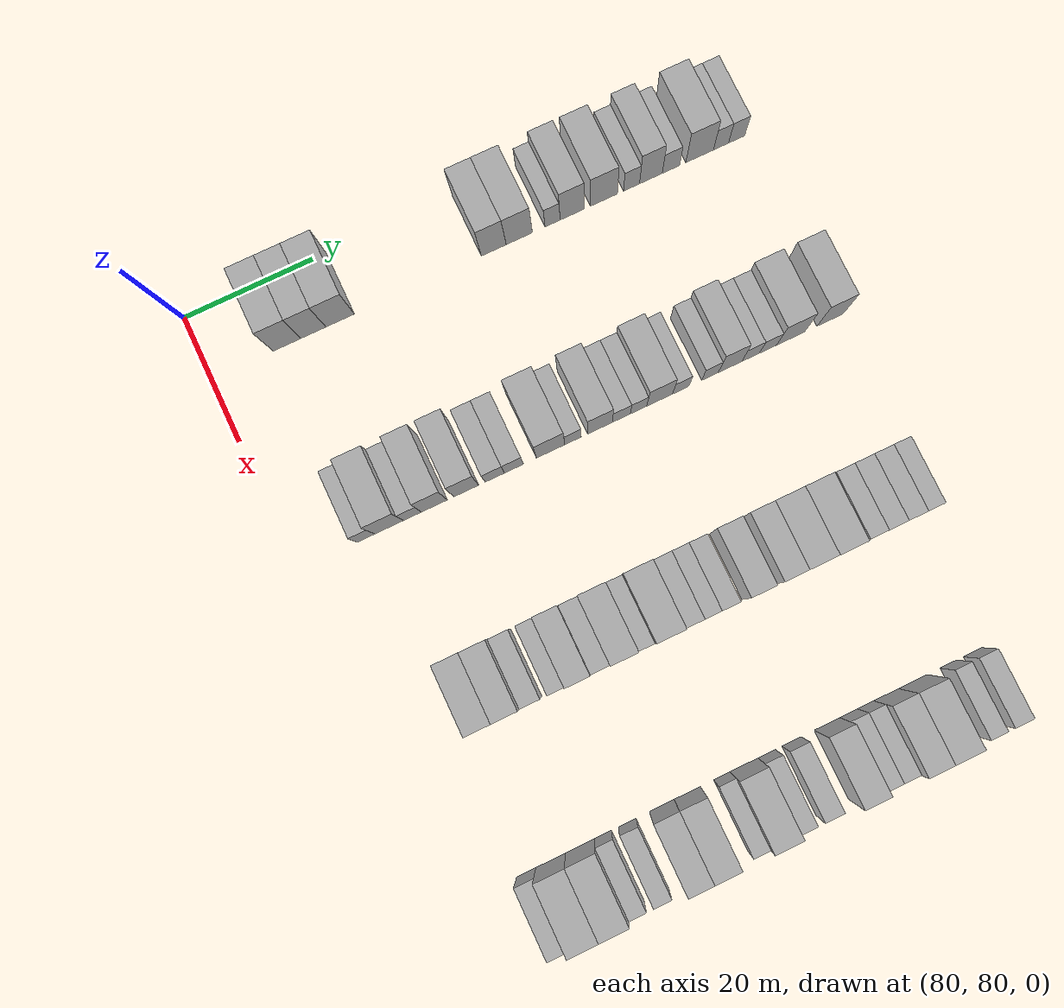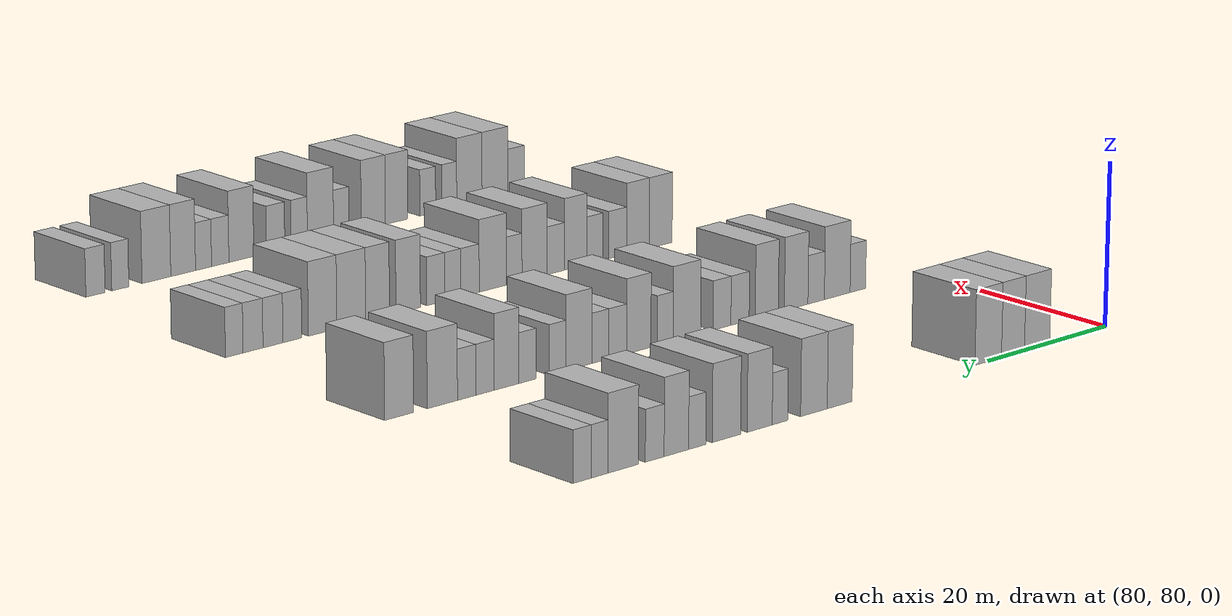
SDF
<sdf version="1.6">
 <world name="default">
  <model name="building_589">
   <static>1</static>
   <pose>85.0000 91.7411 0 0.000000 0.000000 0.000000</pose>
   <link name="link">
    <pose>0 0 4.50 0 0 0</pose>
    <collision name="collision"><geometry><box><size>10.0000 4.2975 9.0000</size></box></geometry></collision>
    <visual name="visual">
     <cast_shadows>0</cast_shadows>
     <geometry><box><size>10.0000 4.2975 9.0000</size></box></geometry>
     <material>
      <script>
       <uri>model://HANNAS_wall/materials/scripts</uri>
       <uri>model://HANNAS_wall/materials/textures</uri>
       <name>vrc/HANNAS_wall</name>
      </script>
     </material>
    </visual>
   </link>
  </model>
  <model name="building_590">
   <static>1</static>
   <pose>85.0000 95.8193 0 0.000000 0.000000 0.000000</pose>
   <link name="link">
    <pose>0 0 4.50 0 0 0</pose>
    <collision name="collision"><geometry><box><size>10.0000 3.8587 9.0000</size></box></geometry></collision>
    <visual name="visual">
     <cast_shadows>0</cast_shadows>
     <geometry><box><size>10.0000 3.8587 9.0000</size></box></geometry>
     <material>
      <script>
       <uri>model://HANNAS_wall/materials/scripts</uri>
       <uri>model://HANNAS_wall/materials/textures</uri>
       <name>vrc/HANNAS_wall</name>
      </script>
     </material>
    </visual>
   </link>
  </model>
  <model name="building_591">
   <static>1</static>
   <pose>85.0000 99.9605 0 0.000000 0.000000 0.000000</pose>
   <link name="link">
    <pose>0 0 4.50 0 0 0</pose>
    <collision name="collision"><geometry><box><size>10.0000 4.4238 9.0000</size></box></geometry></collision>
    <visual name="visual">
     <cast_shadows>0</cast_shadows>
     <geometry><box><size>10.0000 4.4238 9.0000</size></box></geometry>
     <material>
      <script>
       <uri>model://HANNAS_wall/materials/scripts</uri>
       <uri>model://HANNAS_wall/materials/textures</uri>
       <name>vrc/HANNAS_wall</name>
      </script>
     </material>
    </visual>
   </link>
  </model>
  <model name="building_592">
   <static>1</static>
   <pose>85.0000 124.0748 0 0.000000 0.000000 0.000000</pose>
   <link name="link">
    <pose>0 0 4.50 0 0 0</pose>
    <collision name="collision"><geometry><box><size>10.0000 3.9349 9.0000</size></box></geometry></collision>
    <visual name="visual">
     <cast_shadows>0</cast_shadows>
     <geometry><box><size>10.0000 3.9349 9.0000</size></box></geometry>
     <material>
      <script>
       <uri>model://HANNAS_wall/materials/scripts</uri>
       <uri>model://HANNAS_wall/materials/textures</uri>
       <name>vrc/HANNAS_wall</name>
      </script>
     </material>
    </visual>
   </link>
  </model>
  <model name="building_593">
   <static>1</static>
   <pose>85.0000 128.1296 0 0.000000 0.000000 0.000000</pose>
   <link name="link">
    <pose>0 0 4.50 0 0 0</pose>
    <collision name="collision"><geometry><box><size>10.0000 4.1747 9.0000</size></box></geometry></collision>
    <visual name="visual">
     <cast_shadows>0</cast_shadows>
     <geometry><box><size>10.0000 4.1747 9.0000</size></box></geometry>
     <material>
      <script>
       <uri>model://HANNAS_wall/materials/scripts</uri>
       <uri>model://HANNAS_wall/materials/textures</uri>
       <name>vrc/HANNAS_wall</name>
      </script>
     </material>
    </visual>
   </link>
  </model>
  <model name="building_594">
   <static>1</static>
   <pose>85.0000 133.4236 0 0.000000 0.000000 0.000000</pose>
   <link name="link">
    <pose>0 0 3.00 0 0 0</pose>
    <collision name="collision"><geometry><box><size>10.0000 2.4132 6.0000</size></box></geometry></collision>
    <visual name="visual">
     <cast_shadows>0</cast_shadows>
     <geometry><box><size>10.0000 2.4132 6.0000</size></box></geometry>
     <material>
      <script>
       <uri>model://HANNAS_wall/materials/scripts</uri>
       <uri>model://HANNAS_wall/materials/textures</uri>
       <name>vrc/HANNAS_wall</name>
      </script>
     </material>
    </visual>
   </link>
  </model>
  <model name="building_595">
   <static>1</static>
   <pose>85.0000 136.5557 0 0.000000 0.000000 0.000000</pose>
   <link name="link">
    <pose>0 0 4.50 0 0 0</pose>
    <collision name="collision"><geometry><box><size>10.0000 3.8509 9.0000</size></box></geometry></collision>
    <visual name="visual">
     <cast_shadows>0</cast_shadows>
     <geometry><box><size>10.0000 3.8509 9.0000</size></box></geometry>
     <material>
      <script>
       <uri>model://HANNAS_wall/materials/scripts</uri>
       <uri>model://HANNAS_wall/materials/textures</uri>
       <name>vrc/HANNAS_wall</name>
      </script>
     </material>
    </visual>
   </link>
  </model>
  <model name="building_596">
   <static>1</static>
   <pose>85.0000 141.6342 0 0.000000 0.000000 0.000000</pose>
   <link name="link">
    <pose>0 0 4.50 0 0 0</pose>
    <collision name="collision"><geometry><box><size>10.0000 4.3062 9.0000</size></box></geometry></collision>
    <visual name="visual">
     <cast_shadows>0</cast_shadows>
     <geometry><box><size>10.0000 4.3062 9.0000</size></box></geometry>
     <material>
      <script>
       <uri>model://HANNAS_wall/materials/scripts</uri>
       <uri>model://HANNAS_wall/materials/textures</uri>
       <name>vrc/HANNAS_wall</name>
      </script>
     </material>
    </visual>
   </link>
  </model>
  <model name="building_597">
   <static>1</static>
   <pose>85.0000 146.0694 0 0.000000 0.000000 0.000000</pose>
   <link name="link">
    <pose>0 0 3.00 0 0 0</pose>
    <collision name="collision"><geometry><box><size>10.0000 2.5641 6.0000</size></box></geometry></collision>
    <visual name="visual">
     <cast_shadows>0</cast_shadows>
     <geometry><box><size>10.0000 2.5641 6.0000</size></box></geometry>
     <material>
      <script>
       <uri>model://HANNAS_wall/materials/scripts</uri>
       <uri>model://HANNAS_wall/materials/textures</uri>
       <name>vrc/HANNAS_wall</name>
      </script>
     </material>
    </visual>
   </link>
  </model>
  <model name="building_598">
   <static>1</static>
   <pose>85.0000 149.1829 0 0.000000 0.000000 0.000000</pose>
   <link name="link">
    <pose>0 0 4.50 0 0 0</pose>
    <collision name="collision"><geometry><box><size>10.0000 3.6630 9.0000</size></box></geometry></collision>
    <visual name="visual">
     <cast_shadows>0</cast_shadows>
     <geometry><box><size>10.0000 3.6630 9.0000</size></box></geometry>
     <material>
      <script>
       <uri>model://HANNAS_wall/materials/scripts</uri>
       <uri>model://HANNAS_wall/materials/textures</uri>
       <name>vrc/HANNAS_wall</name>
      </script>
     </material>
    </visual>
   </link>
  </model>
  <model name="building_599">
   <static>1</static>
   <pose>85.0000 152.4128 0 0.000000 0.000000 0.000000</pose>
   <link name="link">
    <pose>0 0 3.00 0 0 0</pose>
    <collision name="collision"><geometry><box><size>10.0000 2.7968 6.0000</size></box></geometry></collision>
    <visual name="visual">
     <cast_shadows>0</cast_shadows>
     <geometry><box><size>10.0000 2.7968 6.0000</size></box></geometry>
     <material>
      <script>
       <uri>model://HANNAS_wall/materials/scripts</uri>
       <uri>model://HANNAS_wall/materials/textures</uri>
       <name>vrc/HANNAS_wall</name>
      </script>
     </material>
    </visual>
   </link>
  </model>
  <model name="building_600">
   <static>1</static>
   <pose>85.0000 157.0596 0 0.000000 0.000000 0.000000</pose>
   <link name="link">
    <pose>0 0 4.50 0 0 0</pose>
    <collision name="collision"><geometry><box><size>10.0000 4.4967 9.0000</size></box></geometry></collision>
    <visual name="visual">
     <cast_shadows>0</cast_shadows>
     <geometry><box><size>10.0000 4.4967 9.0000</size></box></geometry>
     <material>
      <script>
       <uri>model://HANNAS_wall/materials/scripts</uri>
       <uri>model://HANNAS_wall/materials/textures</uri>
       <name>vrc/HANNAS_wall</name>
      </script>
     </material>
    </visual>
   </link>
  </model>
  <model name="building_601">
   <static>1</static>
   <pose>85.0000 160.5329 0 0.000000 0.000000 0.000000</pose>
   <link name="link">
    <pose>0 0 3.00 0 0 0</pose>
    <collision name="collision"><geometry><box><size>10.0000 2.4500 6.0000</size></box></geometry></collision>
    <visual name="visual">
     <cast_shadows>0</cast_shadows>
     <geometry><box><size>10.0000 2.4500 6.0000</size></box></geometry>
     <material>
      <script>
       <uri>model://HANNAS_wall/materials/scripts</uri>
       <uri>model://HANNAS_wall/materials/textures</uri>
       <name>vrc/HANNAS_wall</name>
      </script>
     </material>
    </visual>
   </link>
  </model>
  <model name="building_602">
   <static>1</static>
   <pose>85.0000 163.0776 0 0.000000 0.000000 0.000000</pose>
   <link name="link">
    <pose>0 0 3.00 0 0 0</pose>
    <collision name="collision"><geometry><box><size>10.0000 2.6395 6.0000</size></box></geometry></collision>
    <visual name="visual">
     <cast_shadows>0</cast_shadows>
     <geometry><box><size>10.0000 2.6395 6.0000</size></box></geometry>
     <material>
      <script>
       <uri>model://HANNAS_wall/materials/scripts</uri>
       <uri>model://HANNAS_wall/materials/textures</uri>
       <name>vrc/HANNAS_wall</name>
      </script>
     </material>
    </visual>
   </link>
  </model>
  <model name="building_812">
   <static>1</static>
   <pose>115.0000 90.7237 0 0.000000 0.000000 0.000000</pose>
   <link name="link">
    <pose>0 0 3.00 0 0 0</pose>
    <collision name="collision"><geometry><box><size>10.0000 2.6474 6.0000</size></box></geometry></collision>
    <visual name="visual">
     <cast_shadows>0</cast_shadows>
     <geometry><box><size>10.0000 2.6474 6.0000</size></box></geometry>
     <material>
      <script>
       <uri>model://HANNAS_wall/materials/scripts</uri>
       <uri>model://HANNAS_wall/materials/textures</uri>
       <name>vrc/HANNAS_wall</name>
      </script>
     </material>
    </visual>
   </link>
  </model>
  <model name="building_813">
   <static>1</static>
   <pose>115.0000 94.2168 0 0.000000 0.000000 0.000000</pose>
   <link name="link">
    <pose>0 0 4.50 0 0 0</pose>
    <collision name="collision"><geometry><box><size>10.0000 4.3388 9.0000</size></box></geometry></collision>
    <visual name="visual">
     <cast_shadows>0</cast_shadows>
     <geometry><box><size>10.0000 4.3388 9.0000</size></box></geometry>
     <material>
      <script>
       <uri>model://HANNAS_wall/materials/scripts</uri>
       <uri>model://HANNAS_wall/materials/textures</uri>
       <name>vrc/HANNAS_wall</name>
      </script>
     </material>
    </visual>
   </link>
  </model>
  <model name="building_814">
   <static>1</static>
   <pose>115.0000 97.7670 0 0.000000 0.000000 0.000000</pose>
   <link name="link">
    <pose>0 0 3.00 0 0 0</pose>
    <collision name="collision"><geometry><box><size>10.0000 2.7616 6.0000</size></box></geometry></collision>
    <visual name="visual">
     <cast_shadows>0</cast_shadows>
     <geometry><box><size>10.0000 2.7616 6.0000</size></box></geometry>
     <material>
      <script>
       <uri>model://HANNAS_wall/materials/scripts</uri>
       <uri>model://HANNAS_wall/materials/textures</uri>
       <name>vrc/HANNAS_wall</name>
      </script>
     </material>
    </visual>
   </link>
  </model>
  <model name="building_815">
   <static>1</static>
   <pose>115.0000 101.1133 0 0.000000 0.000000 0.000000</pose>
   <link name="link">
    <pose>0 0 4.50 0 0 0</pose>
    <collision name="collision"><geometry><box><size>10.0000 3.9310 9.0000</size></box></geometry></collision>
    <visual name="visual">
     <cast_shadows>0</cast_shadows>
     <geometry><box><size>10.0000 3.9310 9.0000</size></box></geometry>
     <material>
      <script>
       <uri>model://HANNAS_wall/materials/scripts</uri>
       <uri>model://HANNAS_wall/materials/textures</uri>
       <name>vrc/HANNAS_wall</name>
      </script>
     </material>
    </visual>
   </link>
  </model>
  <model name="building_816">
   <static>1</static>
   <pose>115.0000 105.9853 0 0.000000 0.000000 0.000000</pose>
   <link name="link">
    <pose>0 0 4.50 0 0 0</pose>
    <collision name="collision"><geometry><box><size>10.0000 3.8131 9.0000</size></box></geometry></collision>
    <visual name="visual">
     <cast_shadows>0</cast_shadows>
     <geometry><box><size>10.0000 3.8131 9.0000</size></box></geometry>
     <material>
      <script>
       <uri>model://HANNAS_wall/materials/scripts</uri>
       <uri>model://HANNAS_wall/materials/textures</uri>
       <name>vrc/HANNAS_wall</name>
      </script>
     </material>
    </visual>
   </link>
  </model>
  <model name="building_817">
   <static>1</static>
   <pose>115.0000 110.3812 0 0.000000 0.000000 0.000000</pose>
   <link name="link">
    <pose>0 0 3.00 0 0 0</pose>
    <collision name="collision"><geometry><box><size>10.0000 2.9788 6.0000</size></box></geometry></collision>
    <visual name="visual">
     <cast_shadows>0</cast_shadows>
     <geometry><box><size>10.0000 2.9788 6.0000</size></box></geometry>
     <material>
      <script>
       <uri>model://HANNAS_wall/materials/scripts</uri>
       <uri>model://HANNAS_wall/materials/textures</uri>
       <name>vrc/HANNAS_wall</name>
      </script>
     </material>
    </visual>
   </link>
  </model>
  <model name="building_818">
   <static>1</static>
   <pose>115.0000 113.3243 0 0.000000 0.000000 0.000000</pose>
   <link name="link">
    <pose>0 0 3.00 0 0 0</pose>
    <collision name="collision"><geometry><box><size>10.0000 2.9072 6.0000</size></box></geometry></collision>
    <visual name="visual">
     <cast_shadows>0</cast_shadows>
     <geometry><box><size>10.0000 2.9072 6.0000</size></box></geometry>
     <material>
      <script>
       <uri>model://HANNAS_wall/materials/scripts</uri>
       <uri>model://HANNAS_wall/materials/textures</uri>
       <name>vrc/HANNAS_wall</name>
      </script>
     </material>
    </visual>
   </link>
  </model>
  <model name="building_819">
   <static>1</static>
   <pose>115.0000 118.9766 0 0.000000 0.000000 0.000000</pose>
   <link name="link">
    <pose>0 0 4.50 0 0 0</pose>
    <collision name="collision"><geometry><box><size>10.0000 4.3975 9.0000</size></box></geometry></collision>
    <visual name="visual">
     <cast_shadows>0</cast_shadows>
     <geometry><box><size>10.0000 4.3975 9.0000</size></box></geometry>
     <material>
      <script>
       <uri>model://HANNAS_wall/materials/scripts</uri>
       <uri>model://HANNAS_wall/materials/textures</uri>
       <name>vrc/HANNAS_wall</name>
      </script>
     </material>
    </visual>
   </link>
  </model>
  <model name="building_820">
   <static>1</static>
   <pose>115.0000 122.4480 0 0.000000 0.000000 0.000000</pose>
   <link name="link">
    <pose>0 0 3.00 0 0 0</pose>
    <collision name="collision"><geometry><box><size>10.0000 2.5453 6.0000</size></box></geometry></collision>
    <visual name="visual">
     <cast_shadows>0</cast_shadows>
     <geometry><box><size>10.0000 2.5453 6.0000</size></box></geometry>
     <material>
      <script>
       <uri>model://HANNAS_wall/materials/scripts</uri>
       <uri>model://HANNAS_wall/materials/textures</uri>
       <name>vrc/HANNAS_wall</name>
      </script>
     </material>
    </visual>
   </link>
  </model>
  <model name="building_821">
   <static>1</static>
   <pose>115.0000 126.6419 0 0.000000 0.000000 0.000000</pose>
   <link name="link">
    <pose>0 0 4.50 0 0 0</pose>
    <collision name="collision"><geometry><box><size>10.0000 3.8425 9.0000</size></box></geometry></collision>
    <visual name="visual">
     <cast_shadows>0</cast_shadows>
     <geometry><box><size>10.0000 3.8425 9.0000</size></box></geometry>
     <material>
      <script>
       <uri>model://HANNAS_wall/materials/scripts</uri>
       <uri>model://HANNAS_wall/materials/textures</uri>
       <name>vrc/HANNAS_wall</name>
      </script>
     </material>
    </visual>
   </link>
  </model>
  <model name="building_822">
   <static>1</static>
   <pose>115.0000 129.9642 0 0.000000 0.000000 0.000000</pose>
   <link name="link">
    <pose>0 0 3.00 0 0 0</pose>
    <collision name="collision"><geometry><box><size>10.0000 2.8021 6.0000</size></box></geometry></collision>
    <visual name="visual">
     <cast_shadows>0</cast_shadows>
     <geometry><box><size>10.0000 2.8021 6.0000</size></box></geometry>
     <material>
      <script>
       <uri>model://HANNAS_wall/materials/scripts</uri>
       <uri>model://HANNAS_wall/materials/textures</uri>
       <name>vrc/HANNAS_wall</name>
      </script>
     </material>
    </visual>
   </link>
  </model>
  <model name="building_823">
   <static>1</static>
   <pose>115.0000 132.6499 0 0.000000 0.000000 0.000000</pose>
   <link name="link">
    <pose>0 0 3.00 0 0 0</pose>
    <collision name="collision"><geometry><box><size>10.0000 2.5695 6.0000</size></box></geometry></collision>
    <visual name="visual">
     <cast_shadows>0</cast_shadows>
     <geometry><box><size>10.0000 2.5695 6.0000</size></box></geometry>
     <material>
      <script>
       <uri>model://HANNAS_wall/materials/scripts</uri>
       <uri>model://HANNAS_wall/materials/textures</uri>
       <name>vrc/HANNAS_wall</name>
      </script>
     </material>
    </visual>
   </link>
  </model>
  <model name="building_824">
   <static>1</static>
   <pose>115.0000 135.9582 0 0.000000 0.000000 0.000000</pose>
   <link name="link">
    <pose>0 0 4.50 0 0 0</pose>
    <collision name="collision"><geometry><box><size>10.0000 4.0472 9.0000</size></box></geometry></collision>
    <visual name="visual">
     <cast_shadows>0</cast_shadows>
     <geometry><box><size>10.0000 4.0472 9.0000</size></box></geometry>
     <material>
      <script>
       <uri>model://HANNAS_wall/materials/scripts</uri>
       <uri>model://HANNAS_wall/materials/textures</uri>
       <name>vrc/HANNAS_wall</name>
      </script>
     </material>
    </visual>
   </link>
  </model>
  <model name="building_825">
   <static>1</static>
   <pose>115.0000 139.2797 0 0.000000 0.000000 0.000000</pose>
   <link name="link">
    <pose>0 0 3.00 0 0 0</pose>
    <collision name="collision"><geometry><box><size>10.0000 2.5958 6.0000</size></box></geometry></collision>
    <visual name="visual">
     <cast_shadows>0</cast_shadows>
     <geometry><box><size>10.0000 2.5958 6.0000</size></box></geometry>
     <material>
      <script>
       <uri>model://HANNAS_wall/materials/scripts</uri>
       <uri>model://HANNAS_wall/materials/textures</uri>
       <name>vrc/HANNAS_wall</name>
      </script>
     </material>
    </visual>
   </link>
  </model>
  <model name="building_826">
   <static>1</static>
   <pose>115.0000 143.8856 0 0.000000 0.000000 0.000000</pose>
   <link name="link">
    <pose>0 0 3.00 0 0 0</pose>
    <collision name="collision"><geometry><box><size>10.0000 2.6160 6.0000</size></box></geometry></collision>
    <visual name="visual">
     <cast_shadows>0</cast_shadows>
     <geometry><box><size>10.0000 2.6160 6.0000</size></box></geometry>
     <material>
      <script>
       <uri>model://HANNAS_wall/materials/scripts</uri>
       <uri>model://HANNAS_wall/materials/textures</uri>
       <name>vrc/HANNAS_wall</name>
      </script>
     </material>
    </visual>
   </link>
  </model>
  <model name="building_827">
   <static>1</static>
   <pose>115.0000 147.0630 0 0.000000 0.000000 0.000000</pose>
   <link name="link">
    <pose>0 0 4.50 0 0 0</pose>
    <collision name="collision"><geometry><box><size>10.0000 3.7390 9.0000</size></box></geometry></collision>
    <visual name="visual">
     <cast_shadows>0</cast_shadows>
     <geometry><box><size>10.0000 3.7390 9.0000</size></box></geometry>
     <material>
      <script>
       <uri>model://HANNAS_wall/materials/scripts</uri>
       <uri>model://HANNAS_wall/materials/textures</uri>
       <name>vrc/HANNAS_wall</name>
      </script>
     </material>
    </visual>
   </link>
  </model>
  <model name="building_828">
   <static>1</static>
   <pose>115.0000 150.3115 0 0.000000 0.000000 0.000000</pose>
   <link name="link">
    <pose>0 0 3.00 0 0 0</pose>
    <collision name="collision"><geometry><box><size>10.0000 2.7580 6.0000</size></box></geometry></collision>
    <visual name="visual">
     <cast_shadows>0</cast_shadows>
     <geometry><box><size>10.0000 2.7580 6.0000</size></box></geometry>
     <material>
      <script>
       <uri>model://HANNAS_wall/materials/scripts</uri>
       <uri>model://HANNAS_wall/materials/textures</uri>
       <name>vrc/HANNAS_wall</name>
      </script>
     </material>
    </visual>
   </link>
  </model>
  <model name="building_829">
   <static>1</static>
   <pose>115.0000 153.0586 0 0.000000 0.000000 0.000000</pose>
   <link name="link">
    <pose>0 0 3.00 0 0 0</pose>
    <collision name="collision"><geometry><box><size>10.0000 2.7362 6.0000</size></box></geometry></collision>
    <visual name="visual">
     <cast_shadows>0</cast_shadows>
     <geometry><box><size>10.0000 2.7362 6.0000</size></box></geometry>
     <material>
      <script>
       <uri>model://HANNAS_wall/materials/scripts</uri>
       <uri>model://HANNAS_wall/materials/textures</uri>
       <name>vrc/HANNAS_wall</name>
      </script>
     </material>
    </visual>
   </link>
  </model>
  <model name="building_830">
   <static>1</static>
   <pose>115.0000 156.6657 0 0.000000 0.000000 0.000000</pose>
   <link name="link">
    <pose>0 0 4.50 0 0 0</pose>
    <collision name="collision"><geometry><box><size>10.0000 4.4779 9.0000</size></box></geometry></collision>
    <visual name="visual">
     <cast_shadows>0</cast_shadows>
     <geometry><box><size>10.0000 4.4779 9.0000</size></box></geometry>
     <material>
      <script>
       <uri>model://HANNAS_wall/materials/scripts</uri>
       <uri>model://HANNAS_wall/materials/textures</uri>
       <name>vrc/HANNAS_wall</name>
      </script>
     </material>
    </visual>
   </link>
  </model>
  <model name="building_831">
   <static>1</static>
   <pose>115.0000 163.0141 0 0.000000 0.000000 0.000000</pose>
   <link name="link">
    <pose>0 0 4.50 0 0 0</pose>
    <collision name="collision"><geometry><box><size>10.0000 4.2191 9.0000</size></box></geometry></collision>
    <visual name="visual">
     <cast_shadows>0</cast_shadows>
     <geometry><box><size>10.0000 4.2191 9.0000</size></box></geometry>
     <material>
      <script>
       <uri>model://HANNAS_wall/materials/scripts</uri>
       <uri>model://HANNAS_wall/materials/textures</uri>
       <name>vrc/HANNAS_wall</name>
      </script>
     </material>
    </visual>
   </link>
  </model>
  <model name="building_1037">
   <static>1</static>
   <pose>145.0000 94.8056 0 0.000000 0.000000 0.000000</pose>
   <link name="link">
    <pose>0 0 4.50 0 0 0</pose>
    <collision name="collision"><geometry><box><size>10.0000 3.8572 9.0000</size></box></geometry></collision>
    <visual name="visual">
     <cast_shadows>0</cast_shadows>
     <geometry><box><size>10.0000 3.8572 9.0000</size></box></geometry>
     <material>
      <script>
       <uri>model://HANNAS_wall/materials/scripts</uri>
       <uri>model://HANNAS_wall/materials/textures</uri>
       <name>vrc/HANNAS_wall</name>
      </script>
     </material>
    </visual>
   </link>
  </model>
  <model name="building_1038">
   <static>1</static>
   <pose>145.0000 98.6413 0 0.000000 0.000000 0.000000</pose>
   <link name="link">
    <pose>0 0 4.50 0 0 0</pose>
    <collision name="collision"><geometry><box><size>10.0000 3.8142 9.0000</size></box></geometry></collision>
    <visual name="visual">
     <cast_shadows>0</cast_shadows>
     <geometry><box><size>10.0000 3.8142 9.0000</size></box></geometry>
     <material>
      <script>
       <uri>model://HANNAS_wall/materials/scripts</uri>
       <uri>model://HANNAS_wall/materials/textures</uri>
       <name>vrc/HANNAS_wall</name>
      </script>
     </material>
    </visual>
   </link>
  </model>
  <model name="building_1039">
   <static>1</static>
   <pose>145.0000 102.0441 0 0.000000 0.000000 0.000000</pose>
   <link name="link">
    <pose>0 0 3.00 0 0 0</pose>
    <collision name="collision"><geometry><box><size>10.0000 2.9913 6.0000</size></box></geometry></collision>
    <visual name="visual">
     <cast_shadows>0</cast_shadows>
     <geometry><box><size>10.0000 2.9913 6.0000</size></box></geometry>
     <material>
      <script>
       <uri>model://HANNAS_wall/materials/scripts</uri>
       <uri>model://HANNAS_wall/materials/textures</uri>
       <name>vrc/HANNAS_wall</name>
      </script>
     </material>
    </visual>
   </link>
  </model>
  <model name="building_1040">
   <static>1</static>
   <pose>145.0000 105.8323 0 0.000000 0.000000 0.000000</pose>
   <link name="link">
    <pose>0 0 3.00 0 0 0</pose>
    <collision name="collision"><geometry><box><size>10.0000 2.5850 6.0000</size></box></geometry></collision>
    <visual name="visual">
     <cast_shadows>0</cast_shadows>
     <geometry><box><size>10.0000 2.5850 6.0000</size></box></geometry>
     <material>
      <script>
       <uri>model://HANNAS_wall/materials/scripts</uri>
       <uri>model://HANNAS_wall/materials/textures</uri>
       <name>vrc/HANNAS_wall</name>
      </script>
     </material>
    </visual>
   </link>
  </model>
  <model name="building_1041">
   <static>1</static>
   <pose>145.0000 108.9700 0 0.000000 0.000000 0.000000</pose>
   <link name="link">
    <pose>0 0 4.50 0 0 0</pose>
    <collision name="collision"><geometry><box><size>10.0000 3.6904 9.0000</size></box></geometry></collision>
    <visual name="visual">
     <cast_shadows>0</cast_shadows>
     <geometry><box><size>10.0000 3.6904 9.0000</size></box></geometry>
     <material>
      <script>
       <uri>model://HANNAS_wall/materials/scripts</uri>
       <uri>model://HANNAS_wall/materials/textures</uri>
       <name>vrc/HANNAS_wall</name>
      </script>
     </material>
    </visual>
   </link>
  </model>
  <model name="building_1042">
   <static>1</static>
   <pose>145.0000 112.2429 0 0.000000 0.000000 0.000000</pose>
   <link name="link">
    <pose>0 0 3.00 0 0 0</pose>
    <collision name="collision"><geometry><box><size>10.0000 2.8553 6.0000</size></box></geometry></collision>
    <visual name="visual">
     <cast_shadows>0</cast_shadows>
     <geometry><box><size>10.0000 2.8553 6.0000</size></box></geometry>
     <material>
      <script>
       <uri>model://HANNAS_wall/materials/scripts</uri>
       <uri>model://HANNAS_wall/materials/textures</uri>
       <name>vrc/HANNAS_wall</name>
      </script>
     </material>
    </visual>
   </link>
  </model>
  <model name="building_1043">
   <static>1</static>
   <pose>145.0000 115.7261 0 0.000000 0.000000 0.000000</pose>
   <link name="link">
    <pose>0 0 4.50 0 0 0</pose>
    <collision name="collision"><geometry><box><size>10.0000 4.1111 9.0000</size></box></geometry></collision>
    <visual name="visual">
     <cast_shadows>0</cast_shadows>
     <geometry><box><size>10.0000 4.1111 9.0000</size></box></geometry>
     <material>
      <script>
       <uri>model://HANNAS_wall/materials/scripts</uri>
       <uri>model://HANNAS_wall/materials/textures</uri>
       <name>vrc/HANNAS_wall</name>
      </script>
     </material>
    </visual>
   </link>
  </model>
  <model name="building_1044">
   <static>1</static>
   <pose>145.0000 119.0302 0 0.000000 0.000000 0.000000</pose>
   <link name="link">
    <pose>0 0 3.00 0 0 0</pose>
    <collision name="collision"><geometry><box><size>10.0000 2.4971 6.0000</size></box></geometry></collision>
    <visual name="visual">
     <cast_shadows>0</cast_shadows>
     <geometry><box><size>10.0000 2.4971 6.0000</size></box></geometry>
     <material>
      <script>
       <uri>model://HANNAS_wall/materials/scripts</uri>
       <uri>model://HANNAS_wall/materials/textures</uri>
       <name>vrc/HANNAS_wall</name>
      </script>
     </material>
    </visual>
   </link>
  </model>
  <model name="building_1045">
   <static>1</static>
   <pose>145.0000 122.4626 0 0.000000 0.000000 0.000000</pose>
   <link name="link">
    <pose>0 0 4.50 0 0 0</pose>
    <collision name="collision"><geometry><box><size>10.0000 4.3678 9.0000</size></box></geometry></collision>
    <visual name="visual">
     <cast_shadows>0</cast_shadows>
     <geometry><box><size>10.0000 4.3678 9.0000</size></box></geometry>
     <material>
      <script>
       <uri>model://HANNAS_wall/materials/scripts</uri>
       <uri>model://HANNAS_wall/materials/textures</uri>
       <name>vrc/HANNAS_wall</name>
      </script>
     </material>
    </visual>
   </link>
  </model>
  <model name="building_1046">
   <static>1</static>
   <pose>145.0000 126.1258 0 0.000000 0.000000 0.000000</pose>
   <link name="link">
    <pose>0 0 3.00 0 0 0</pose>
    <collision name="collision"><geometry><box><size>10.0000 2.9586 6.0000</size></box></geometry></collision>
    <visual name="visual">
     <cast_shadows>0</cast_shadows>
     <geometry><box><size>10.0000 2.9586 6.0000</size></box></geometry>
     <material>
      <script>
       <uri>model://HANNAS_wall/materials/scripts</uri>
       <uri>model://HANNAS_wall/materials/textures</uri>
       <name>vrc/HANNAS_wall</name>
      </script>
     </material>
    </visual>
   </link>
  </model>
  <model name="building_1047">
   <static>1</static>
   <pose>145.0000 128.8716 0 0.000000 0.000000 0.000000</pose>
   <link name="link">
    <pose>0 0 3.00 0 0 0</pose>
    <collision name="collision"><geometry><box><size>10.0000 2.5330 6.0000</size></box></geometry></collision>
    <visual name="visual">
     <cast_shadows>0</cast_shadows>
     <geometry><box><size>10.0000 2.5330 6.0000</size></box></geometry>
     <material>
      <script>
       <uri>model://HANNAS_wall/materials/scripts</uri>
       <uri>model://HANNAS_wall/materials/textures</uri>
       <name>vrc/HANNAS_wall</name>
      </script>
     </material>
    </visual>
   </link>
  </model>
  <model name="building_1048">
   <static>1</static>
   <pose>145.0000 131.5411 0 0.000000 0.000000 0.000000</pose>
   <link name="link">
    <pose>0 0 3.00 0 0 0</pose>
    <collision name="collision"><geometry><box><size>10.0000 2.8059 6.0000</size></box></geometry></collision>
    <visual name="visual">
     <cast_shadows>0</cast_shadows>
     <geometry><box><size>10.0000 2.8059 6.0000</size></box></geometry>
     <material>
      <script>
       <uri>model://HANNAS_wall/materials/scripts</uri>
       <uri>model://HANNAS_wall/materials/textures</uri>
       <name>vrc/HANNAS_wall</name>
      </script>
     </material>
    </visual>
   </link>
  </model>
  <model name="building_1049">
   <static>1</static>
   <pose>145.0000 135.8463 0 0.000000 0.000000 0.000000</pose>
   <link name="link">
    <pose>0 0 4.50 0 0 0</pose>
    <collision name="collision"><geometry><box><size>10.0000 3.8045 9.0000</size></box></geometry></collision>
    <visual name="visual">
     <cast_shadows>0</cast_shadows>
     <geometry><box><size>10.0000 3.8045 9.0000</size></box></geometry>
     <material>
      <script>
       <uri>model://HANNAS_wall/materials/scripts</uri>
       <uri>model://HANNAS_wall/materials/textures</uri>
       <name>vrc/HANNAS_wall</name>
      </script>
     </material>
    </visual>
   </link>
  </model>
  <model name="building_1050">
   <static>1</static>
   <pose>145.0000 140.5820 0 0.000000 0.000000 0.000000</pose>
   <link name="link">
    <pose>0 0 4.50 0 0 0</pose>
    <collision name="collision"><geometry><box><size>10.0000 3.6670 9.0000</size></box></geometry></collision>
    <visual name="visual">
     <cast_shadows>0</cast_shadows>
     <geometry><box><size>10.0000 3.6670 9.0000</size></box></geometry>
     <material>
      <script>
       <uri>model://HANNAS_wall/materials/scripts</uri>
       <uri>model://HANNAS_wall/materials/textures</uri>
       <name>vrc/HANNAS_wall</name>
      </script>
     </material>
    </visual>
   </link>
  </model>
  <model name="building_1051">
   <static>1</static>
   <pose>145.0000 144.6252 0 0.000000 0.000000 0.000000</pose>
   <link name="link">
    <pose>0 0 4.50 0 0 0</pose>
    <collision name="collision"><geometry><box><size>10.0000 4.4194 9.0000</size></box></geometry></collision>
    <visual name="visual">
     <cast_shadows>0</cast_shadows>
     <geometry><box><size>10.0000 4.4194 9.0000</size></box></geometry>
     <material>
      <script>
       <uri>model://HANNAS_wall/materials/scripts</uri>
       <uri>model://HANNAS_wall/materials/textures</uri>
       <name>vrc/HANNAS_wall</name>
      </script>
     </material>
    </visual>
   </link>
  </model>
  <model name="building_1052">
   <static>1</static>
   <pose>145.0000 148.9930 0 0.000000 0.000000 0.000000</pose>
   <link name="link">
    <pose>0 0 4.50 0 0 0</pose>
    <collision name="collision"><geometry><box><size>10.0000 4.3162 9.0000</size></box></geometry></collision>
    <visual name="visual">
     <cast_shadows>0</cast_shadows>
     <geometry><box><size>10.0000 4.3162 9.0000</size></box></geometry>
     <material>
      <script>
       <uri>model://HANNAS_wall/materials/scripts</uri>
       <uri>model://HANNAS_wall/materials/textures</uri>
       <name>vrc/HANNAS_wall</name>
      </script>
     </material>
    </visual>
   </link>
  </model>
  <model name="building_1053">
   <static>1</static>
   <pose>145.0000 153.5647 0 0.000000 0.000000 0.000000</pose>
   <link name="link">
    <pose>0 0 3.00 0 0 0</pose>
    <collision name="collision"><geometry><box><size>10.0000 2.8272 6.0000</size></box></geometry></collision>
    <visual name="visual">
     <cast_shadows>0</cast_shadows>
     <geometry><box><size>10.0000 2.8272 6.0000</size></box></geometry>
     <material>
      <script>
       <uri>model://HANNAS_wall/materials/scripts</uri>
       <uri>model://HANNAS_wall/materials/textures</uri>
       <name>vrc/HANNAS_wall</name>
      </script>
     </material>
    </visual>
   </link>
  </model>
  <model name="building_1054">
   <static>1</static>
   <pose>145.0000 156.4675 0 0.000000 0.000000 0.000000</pose>
   <link name="link">
    <pose>0 0 3.00 0 0 0</pose>
    <collision name="collision"><geometry><box><size>10.0000 2.9783 6.0000</size></box></geometry></collision>
    <visual name="visual">
     <cast_shadows>0</cast_shadows>
     <geometry><box><size>10.0000 2.9783 6.0000</size></box></geometry>
     <material>
      <script>
       <uri>model://HANNAS_wall/materials/scripts</uri>
       <uri>model://HANNAS_wall/materials/textures</uri>
       <name>vrc/HANNAS_wall</name>
      </script>
     </material>
    </visual>
   </link>
  </model>
  <model name="building_1055">
   <static>1</static>
   <pose>145.0000 159.4300 0 0.000000 0.000000 0.000000</pose>
   <link name="link">
    <pose>0 0 3.00 0 0 0</pose>
    <collision name="collision"><geometry><box><size>10.0000 2.9468 6.0000</size></box></geometry></collision>
    <visual name="visual">
     <cast_shadows>0</cast_shadows>
     <geometry><box><size>10.0000 2.9468 6.0000</size></box></geometry>
     <material>
      <script>
       <uri>model://HANNAS_wall/materials/scripts</uri>
       <uri>model://HANNAS_wall/materials/textures</uri>
       <name>vrc/HANNAS_wall</name>
      </script>
     </material>
    </visual>
   </link>
  </model>
  <model name="building_1056">
   <static>1</static>
   <pose>145.0000 162.2058 0 0.000000 0.000000 0.000000</pose>
   <link name="link">
    <pose>0 0 3.00 0 0 0</pose>
    <collision name="collision"><geometry><box><size>10.0000 2.6047 6.0000</size></box></geometry></collision>
    <visual name="visual">
     <cast_shadows>0</cast_shadows>
     <geometry><box><size>10.0000 2.6047 6.0000</size></box></geometry>
     <material>
      <script>
       <uri>model://HANNAS_wall/materials/scripts</uri>
       <uri>model://HANNAS_wall/materials/textures</uri>
       <name>vrc/HANNAS_wall</name>
      </script>
     </material>
    </visual>
   </link>
  </model>
  <model name="building_1269">
   <static>1</static>
   <pose>175.0000 91.8229 0 0.000000 0.000000 0.000000</pose>
   <link name="link">
    <pose>0 0 3.00 0 0 0</pose>
    <collision name="collision"><geometry><box><size>10.0000 2.8371 6.0000</size></box></geometry></collision>
    <visual name="visual">
     <cast_shadows>0</cast_shadows>
     <geometry><box><size>10.0000 2.8371 6.0000</size></box></geometry>
     <material>
      <script>
       <uri>model://HANNAS_wall/materials/scripts</uri>
       <uri>model://HANNAS_wall/materials/textures</uri>
       <name>vrc/HANNAS_wall</name>
      </script>
     </material>
    </visual>
   </link>
  </model>
  <model name="building_1270">
   <static>1</static>
   <pose>175.0000 95.4418 0 0.000000 0.000000 0.000000</pose>
   <link name="link">
    <pose>0 0 4.50 0 0 0</pose>
    <collision name="collision"><geometry><box><size>10.0000 4.4008 9.0000</size></box></geometry></collision>
    <visual name="visual">
     <cast_shadows>0</cast_shadows>
     <geometry><box><size>10.0000 4.4008 9.0000</size></box></geometry>
     <material>
      <script>
       <uri>model://HANNAS_wall/materials/scripts</uri>
       <uri>model://HANNAS_wall/materials/textures</uri>
       <name>vrc/HANNAS_wall</name>
      </script>
     </material>
    </visual>
   </link>
  </model>
  <model name="building_1271">
   <static>1</static>
   <pose>175.0000 99.7795 0 0.000000 0.000000 0.000000</pose>
   <link name="link">
    <pose>0 0 4.50 0 0 0</pose>
    <collision name="collision"><geometry><box><size>10.0000 4.2746 9.0000</size></box></geometry></collision>
    <visual name="visual">
     <cast_shadows>0</cast_shadows>
     <geometry><box><size>10.0000 4.2746 9.0000</size></box></geometry>
     <material>
      <script>
       <uri>model://HANNAS_wall/materials/scripts</uri>
       <uri>model://HANNAS_wall/materials/textures</uri>
       <name>vrc/HANNAS_wall</name>
      </script>
     </material>
    </visual>
   </link>
  </model>
  <model name="building_1272">
   <static>1</static>
   <pose>175.0000 103.1786 0 0.000000 0.000000 0.000000</pose>
   <link name="link">
    <pose>0 0 3.00 0 0 0</pose>
    <collision name="collision"><geometry><box><size>10.0000 2.5236 6.0000</size></box></geometry></collision>
    <visual name="visual">
     <cast_shadows>0</cast_shadows>
     <geometry><box><size>10.0000 2.5236 6.0000</size></box></geometry>
     <material>
      <script>
       <uri>model://HANNAS_wall/materials/scripts</uri>
       <uri>model://HANNAS_wall/materials/textures</uri>
       <name>vrc/HANNAS_wall</name>
      </script>
     </material>
    </visual>
   </link>
  </model>
  <model name="building_1273">
   <static>1</static>
   <pose>175.0000 106.7563 0 0.000000 0.000000 0.000000</pose>
   <link name="link">
    <pose>0 0 3.00 0 0 0</pose>
    <collision name="collision"><geometry><box><size>10.0000 2.6317 6.0000</size></box></geometry></collision>
    <visual name="visual">
     <cast_shadows>0</cast_shadows>
     <geometry><box><size>10.0000 2.6317 6.0000</size></box></geometry>
     <material>
      <script>
       <uri>model://HANNAS_wall/materials/scripts</uri>
       <uri>model://HANNAS_wall/materials/textures</uri>
       <name>vrc/HANNAS_wall</name>
      </script>
     </material>
    </visual>
   </link>
  </model>
  <model name="building_1274">
   <static>1</static>
   <pose>175.0000 111.9187 0 0.000000 0.000000 0.000000</pose>
   <link name="link">
    <pose>0 0 4.50 0 0 0</pose>
    <collision name="collision"><geometry><box><size>10.0000 3.6932 9.0000</size></box></geometry></collision>
    <visual name="visual">
     <cast_shadows>0</cast_shadows>
     <geometry><box><size>10.0000 3.6932 9.0000</size></box></geometry>
     <material>
      <script>
       <uri>model://HANNAS_wall/materials/scripts</uri>
       <uri>model://HANNAS_wall/materials/textures</uri>
       <name>vrc/HANNAS_wall</name>
      </script>
     </material>
    </visual>
   </link>
  </model>
  <model name="building_1275">
   <static>1</static>
   <pose>175.0000 115.7341 0 0.000000 0.000000 0.000000</pose>
   <link name="link">
    <pose>0 0 4.50 0 0 0</pose>
    <collision name="collision"><geometry><box><size>10.0000 3.9374 9.0000</size></box></geometry></collision>
    <visual name="visual">
     <cast_shadows>0</cast_shadows>
     <geometry><box><size>10.0000 3.9374 9.0000</size></box></geometry>
     <material>
      <script>
       <uri>model://HANNAS_wall/materials/scripts</uri>
       <uri>model://HANNAS_wall/materials/textures</uri>
       <name>vrc/HANNAS_wall</name>
      </script>
     </material>
    </visual>
   </link>
  </model>
  <model name="building_1276">
   <static>1</static>
   <pose>175.0000 120.9493 0 0.000000 0.000000 0.000000</pose>
   <link name="link">
    <pose>0 0 3.00 0 0 0</pose>
    <collision name="collision"><geometry><box><size>10.0000 2.4931 6.0000</size></box></geometry></collision>
    <visual name="visual">
     <cast_shadows>0</cast_shadows>
     <geometry><box><size>10.0000 2.4931 6.0000</size></box></geometry>
     <material>
      <script>
       <uri>model://HANNAS_wall/materials/scripts</uri>
       <uri>model://HANNAS_wall/materials/textures</uri>
       <name>vrc/HANNAS_wall</name>
      </script>
     </material>
    </visual>
   </link>
  </model>
  <model name="building_1277">
   <static>1</static>
   <pose>175.0000 124.2988 0 0.000000 0.000000 0.000000</pose>
   <link name="link">
    <pose>0 0 4.50 0 0 0</pose>
    <collision name="collision"><geometry><box><size>10.0000 4.2058 9.0000</size></box></geometry></collision>
    <visual name="visual">
     <cast_shadows>0</cast_shadows>
     <geometry><box><size>10.0000 4.2058 9.0000</size></box></geometry>
     <material>
      <script>
       <uri>model://HANNAS_wall/materials/scripts</uri>
       <uri>model://HANNAS_wall/materials/textures</uri>
       <name>vrc/HANNAS_wall</name>
      </script>
     </material>
    </visual>
   </link>
  </model>
  <model name="building_1278">
   <static>1</static>
   <pose>175.0000 127.7069 0 0.000000 0.000000 0.000000</pose>
   <link name="link">
    <pose>0 0 3.00 0 0 0</pose>
    <collision name="collision"><geometry><box><size>10.0000 2.6106 6.0000</size></box></geometry></collision>
    <visual name="visual">
     <cast_shadows>0</cast_shadows>
     <geometry><box><size>10.0000 2.6106 6.0000</size></box></geometry>
     <material>
      <script>
       <uri>model://HANNAS_wall/materials/scripts</uri>
       <uri>model://HANNAS_wall/materials/textures</uri>
       <name>vrc/HANNAS_wall</name>
      </script>
     </material>
    </visual>
   </link>
  </model>
  <model name="building_1279">
   <static>1</static>
   <pose>175.0000 131.4640 0 0.000000 0.000000 0.000000</pose>
   <link name="link">
    <pose>0 0 3.00 0 0 0</pose>
    <collision name="collision"><geometry><box><size>10.0000 2.9035 6.0000</size></box></geometry></collision>
    <visual name="visual">
     <cast_shadows>0</cast_shadows>
     <geometry><box><size>10.0000 2.9035 6.0000</size></box></geometry>
     <material>
      <script>
       <uri>model://HANNAS_wall/materials/scripts</uri>
       <uri>model://HANNAS_wall/materials/textures</uri>
       <name>vrc/HANNAS_wall</name>
      </script>
     </material>
    </visual>
   </link>
  </model>
  <model name="building_1280">
   <static>1</static>
   <pose>175.0000 136.8698 0 0.000000 0.000000 0.000000</pose>
   <link name="link">
    <pose>0 0 4.50 0 0 0</pose>
    <collision name="collision"><geometry><box><size>10.0000 3.9082 9.0000</size></box></geometry></collision>
    <visual name="visual">
     <cast_shadows>0</cast_shadows>
     <geometry><box><size>10.0000 3.9082 9.0000</size></box></geometry>
     <material>
      <script>
       <uri>model://HANNAS_wall/materials/scripts</uri>
       <uri>model://HANNAS_wall/materials/textures</uri>
       <name>vrc/HANNAS_wall</name>
      </script>
     </material>
    </visual>
   </link>
  </model>
  <model name="building_1281">
   <static>1</static>
   <pose>175.0000 140.1741 0 0.000000 0.000000 0.000000</pose>
   <link name="link">
    <pose>0 0 3.00 0 0 0</pose>
    <collision name="collision"><geometry><box><size>10.0000 2.7004 6.0000</size></box></geometry></collision>
    <visual name="visual">
     <cast_shadows>0</cast_shadows>
     <geometry><box><size>10.0000 2.7004 6.0000</size></box></geometry>
     <material>
      <script>
       <uri>model://HANNAS_wall/materials/scripts</uri>
       <uri>model://HANNAS_wall/materials/textures</uri>
       <name>vrc/HANNAS_wall</name>
      </script>
     </material>
    </visual>
   </link>
  </model>
  <model name="building_1282">
   <static>1</static>
   <pose>175.0000 142.7661 0 0.000000 0.000000 0.000000</pose>
   <link name="link">
    <pose>0 0 3.00 0 0 0</pose>
    <collision name="collision"><geometry><box><size>10.0000 2.4835 6.0000</size></box></geometry></collision>
    <visual name="visual">
     <cast_shadows>0</cast_shadows>
     <geometry><box><size>10.0000 2.4835 6.0000</size></box></geometry>
     <material>
      <script>
       <uri>model://HANNAS_wall/materials/scripts</uri>
       <uri>model://HANNAS_wall/materials/textures</uri>
       <name>vrc/HANNAS_wall</name>
      </script>
     </material>
    </visual>
   </link>
  </model>
  <model name="building_1283">
   <static>1</static>
   <pose>175.0000 145.9130 0 0.000000 0.000000 0.000000</pose>
   <link name="link">
    <pose>0 0 4.50 0 0 0</pose>
    <collision name="collision"><geometry><box><size>10.0000 3.8104 9.0000</size></box></geometry></collision>
    <visual name="visual">
     <cast_shadows>0</cast_shadows>
     <geometry><box><size>10.0000 3.8104 9.0000</size></box></geometry>
     <material>
      <script>
       <uri>model://HANNAS_wall/materials/scripts</uri>
       <uri>model://HANNAS_wall/materials/textures</uri>
       <name>vrc/HANNAS_wall</name>
      </script>
     </material>
    </visual>
   </link>
  </model>
  <model name="building_1284">
   <static>1</static>
   <pose>175.0000 150.0115 0 0.000000 0.000000 0.000000</pose>
   <link name="link">
    <pose>0 0 4.50 0 0 0</pose>
    <collision name="collision"><geometry><box><size>10.0000 4.3865 9.0000</size></box></geometry></collision>
    <visual name="visual">
     <cast_shadows>0</cast_shadows>
     <geometry><box><size>10.0000 4.3865 9.0000</size></box></geometry>
     <material>
      <script>
       <uri>model://HANNAS_wall/materials/scripts</uri>
       <uri>model://HANNAS_wall/materials/textures</uri>
       <name>vrc/HANNAS_wall</name>
      </script>
     </material>
    </visual>
   </link>
  </model>
  <model name="building_1285">
   <static>1</static>
   <pose>175.0000 155.4947 0 0.000000 0.000000 0.000000</pose>
   <link name="link">
    <pose>0 0 3.00 0 0 0</pose>
    <collision name="collision"><geometry><box><size>10.0000 2.5800 6.0000</size></box></geometry></collision>
    <visual name="visual">
     <cast_shadows>0</cast_shadows>
     <geometry><box><size>10.0000 2.5800 6.0000</size></box></geometry>
     <material>
      <script>
       <uri>model://HANNAS_wall/materials/scripts</uri>
       <uri>model://HANNAS_wall/materials/textures</uri>
       <name>vrc/HANNAS_wall</name>
      </script>
     </material>
    </visual>
   </link>
  </model>
  <model name="building_1286">
   <static>1</static>
   <pose>175.0000 159.2263 0 0.000000 0.000000 0.000000</pose>
   <link name="link">
    <pose>0 0 3.00 0 0 0</pose>
    <collision name="collision"><geometry><box><size>10.0000 2.8832 6.0000</size></box></geometry></collision>
    <visual name="visual">
     <cast_shadows>0</cast_shadows>
     <geometry><box><size>10.0000 2.8832 6.0000</size></box></geometry>
     <material>
      <script>
       <uri>model://HANNAS_wall/materials/scripts</uri>
       <uri>model://HANNAS_wall/materials/textures</uri>
       <name>vrc/HANNAS_wall</name>
      </script>
     </material>
    </visual>
   </link>
  </model>
 </world>
</sdf>
